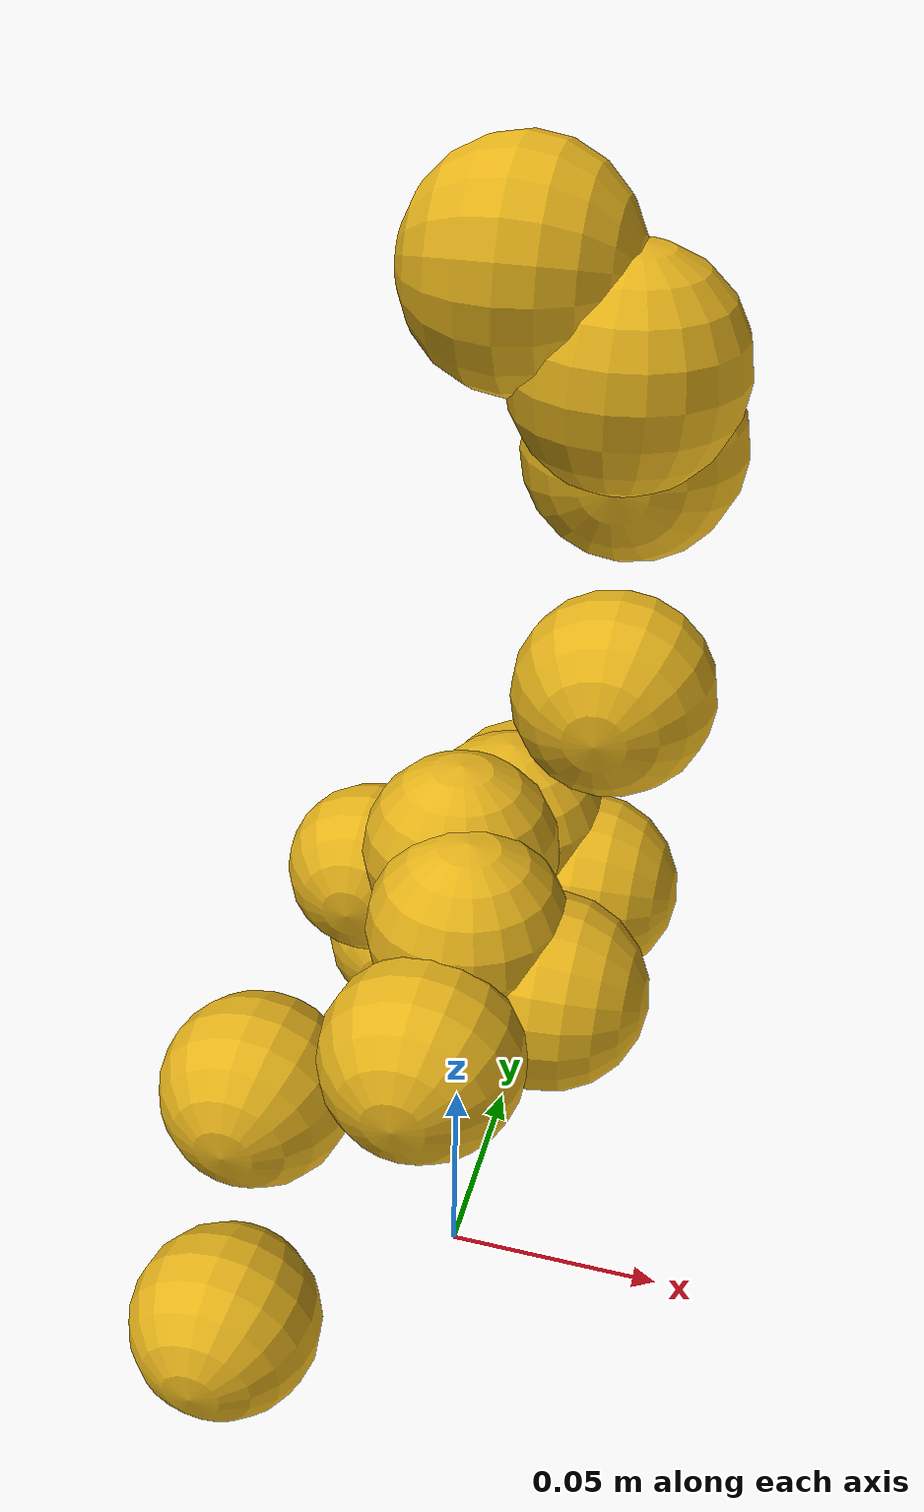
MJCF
<mujoco model="microduck">
  <compiler angle="radian" autolimits="true" />
  <worldbody>

    <body name="trunk_base" pos="0 0 0.12" quat="1 0 0 0">
      <freejoint name="trunk_base_freejoint" />
      <inertial pos="-0.0184191 6.58793e-06 0.00237545" mass="0.264385" fullinertia="0.00014465 0.000173927 0.000155277 1.1006e-08 -1.48335e-05 -7.0102e-08" />

      <site group="3" name="imu_bno" pos="-0.032 0.0140011 0.0430618" quat="1 0 -0 -0" />

      <site group="3" name="imu" pos="-0.021 6.53121e-05 -0.0148911" quat="1 -0 0 0" />

      <body name="yaw2roll" pos="0.006 0.0175 -0.005" quat="0 -0.707107 -0.707107 -0">

        <joint axis="0 0 1" name="left_hip_yaw" type="hinge" range="-0.4363323129985824 0.5235987755982988" />
        <inertial pos="-8.6e-11 0.00121491 0.0169312" mass="0.0235131" fullinertia="4.332e-06 3.52213e-06 2.40737e-06 -0 -0 -6.1011e-08" />

        <body name="hip_l" pos="-0 0.0165 0.0125" quat="0.707107 -0.707107 -0 0">

          <joint axis="0 0 1" name="left_hip_roll" type="hinge" range="-0.3839724354387516 0.38397243543875337" />
          <inertial pos="0.0152731 1.5269e-08 -0.00887078" mass="0.00521" fullinertia="7.39697e-07 9.80856e-07 5.50165e-07 1e-12 3.32804e-07 -1e-12" />

          <body name="left_upper_leg" pos="0.025 0 -0.0185" quat="0.5 -0.5 0.5 -0.5">

            <joint axis="0 0 1" name="left_hip_pitch" type="hinge" range="-1.5707963267949037 1.5707963267948895" />
            <inertial pos="0.00731784 0.0224795 0.0124951" mass="0.04315" fullinertia="1.47473e-05 8.74297e-06 1.74437e-05 -4.30685e-06 2.48476e-07 3.43647e-07" />

            <body name="leg" pos="0.022 0.0357771 -0.004" quat="0 0.707107 0.707107 -0">

              <joint axis="0 0 1" name="left_knee" type="hinge" range="-1.570796326794901 1.5707963267948921" />
              <inertial pos="-1.52e-10 0.0318937 -0.00953505" mass="0.0215844" fullinertia="5.25054e-06 2.15507e-06 4.33924e-06 -1e-12 0 7.64996e-07" />

              <body name="ankle_left" pos="-0 0.042 -0.026" quat="0 1 0 -0">

                <joint axis="0 0 1" name="left_ankle" type="hinge" range="-1.5707963267949019 1.5707963267948912" />
                <inertial pos="-0.0064761 -0.0135798 -0.0156785" mass="0.0264653" fullinertia="5.54455e-06 1.04088e-05 7.28364e-06 -1.94121e-07 8.6681e-08 5.8663e-08" />

                <site group="3" name="left_foot" pos="-0 -0.0237879 -0.0140852" quat="0 -0 0.707107 0.707107" />
              <geom type="sphere" size="0.02" rgba="0.9 0.7 0.1 1" /></body>
            <geom type="sphere" size="0.02" rgba="0.9 0.7 0.1 1" /></body>
          <geom type="sphere" size="0.02" rgba="0.9 0.7 0.1 1" /></body>
        <geom type="sphere" size="0.02" rgba="0.9 0.7 0.1 1" /></body>
      <geom type="sphere" size="0.02" rgba="0.9 0.7 0.1 1" /></body>

      <body name="neck" pos="0.026 0.0145011 0.0324424" quat="0 -0 -0.707107 0.707107">

        <joint axis="0 0 1" name="neck_pitch" type="hinge" range="-1.5707963267948966 1.0471975511965976" />
        <inertial pos="0 -0.025 0.0141665" mass="0.0368414" fullinertia="1.72925e-05 3.12694e-06 1.63707e-05 0 0 0" />

        <body name="neck_pitch" pos="0 -0.05 0" quat="0 1 0 0">

          <joint axis="0 0 1" name="head_pitch" type="hinge" range="-1.5707963267948966 1.5707963267948966" />
          <inertial pos="-6.533e-09 0.0116641 -0.0145" mass="0.00572" fullinertia="1.09186e-06 9.66855e-07 5.12111e-07 0 0 0" />

          <body name="yaw_roll_motion" pos="-0 0.0186931 -0.0145" quat="0 -0 -0.707107 -0.707107">

            <joint axis="0 0 1" name="head_yaw" type="hinge" range="-2.967059728390364 2.967059728390357" />
            <inertial pos="-0.00140611 -0.00599577 0.0155412" mass="0.02492" fullinertia="3.73979e-06 3.14478e-06 4.07916e-06 1.87232e-07 4.603e-09 3.1883e-08" />

            <body name="bottom_head_shell" pos="-0.0179 0 0.0145" quat="0.707107 -0 -0.707107 0">

              <joint axis="0 0 1" name="head_roll" type="hinge" range="-0.4363323129986037 0.43633231299856107" />
              <inertial pos="0.00368889 0.00145319 -0.0329861" mass="0.172649" fullinertia="0.000292186 0.000223546 0.000142648 -1.11987e-06 3.85879e-06 3.78829e-06" />

              <site group="3" name="head_camera" pos="0.01175 0 -0.0735" quat="0.707107 0 0.707107 -0" />
              <site group="3" name="mouth_tip" pos="-0.00829334 0 -0.0777383" quat="0.658004 -0.0201775 0.75239 0.0230718" />

              <site group="3" name="tof" pos="0.0143 0.0225 -0.0735" quat="0.707107 0 0.707107 -0" />

              <site group="3" name="head_imu" pos="0.0114823 0.000202447 -0.05126" quat="1 0 0 -0" />
            <geom type="sphere" size="0.02" rgba="0.9 0.7 0.1 1" /></body>
          <geom type="sphere" size="0.02" rgba="0.9 0.7 0.1 1" /></body>
        <geom type="sphere" size="0.02" rgba="0.9 0.7 0.1 1" /></body>
      <geom type="sphere" size="0.02" rgba="0.9 0.7 0.1 1" /></body>

      <body name="bearing_roll" pos="0.006 -0.0175 -0.005" quat="0 -0.707107 -0.707107 -0">

        <joint axis="0 0 1" name="right_hip_yaw" type="hinge" range="-0.5235987755982988 0.4363323129985824" />
        <inertial pos="-8.6e-11 0.00121491 0.0169312" mass="0.0235131" fullinertia="4.332e-06 3.52213e-06 2.40737e-06 -0 -0 -6.1011e-08" />

        <body name="hip_l_2" pos="-0 0.0165 0.0125" quat="0 -0 0.707107 0.707107">

          <joint axis="0 0 1" name="right_hip_roll" type="hinge" range="-0.3839724354387525 0.3839724354387525" />
          <inertial pos="0.0152731 1.5309e-08 -0.00887078" mass="0.00521" fullinertia="7.39697e-07 9.80856e-07 5.50165e-07 1e-12 3.32804e-07 -1e-12" />

          <body name="right_upper_leg" pos="0.025 0 -0.0185" quat="0.5 -0.5 0.5 -0.5">

            <joint axis="0 0 1" name="right_hip_pitch" type="hinge" range="-1.5707963267949 1.570796326794893" />
            <inertial pos="-0.00731784 0.0224795 0.0124951" mass="0.04315" fullinertia="1.47473e-05 8.74297e-06 1.74437e-05 4.30685e-06 -2.48476e-07 3.43648e-07" />

            <body name="leg_2" pos="-0.022 0.0357771 -0.004" quat="0 1 -0 -0">

              <joint axis="0 0 1" name="right_knee" type="hinge" range="-1.570796326794901 1.5707963267948921" />
              <inertial pos="-0.0318937 -1.52e-10 -0.00953505" mass="0.0215844" fullinertia="2.15507e-06 5.25054e-06 4.33924e-06 1e-12 -7.64996e-07 0" />

              <body name="ankle_right" pos="-0.042 -0 -0.026" quat="0 -0.707107 0.707107 0">

                <joint axis="0 0 1" name="right_ankle" type="hinge" range="-1.5707963267949028 1.5707963267948903" />
                <inertial pos="-0.00647683 0.0135791 -0.0156784" mass="0.0264654" fullinertia="5.54401e-06 1.04095e-05 7.28472e-06 1.94071e-07 8.5523e-08 -5.871e-08" />

                <site group="3" name="right_foot" pos="-0 0.0237879 -0.0140852" quat="0 -0 0.707107 -0.707107" />
              <geom type="sphere" size="0.02" rgba="0.9 0.7 0.1 1" /></body>
            <geom type="sphere" size="0.02" rgba="0.9 0.7 0.1 1" /></body>
          <geom type="sphere" size="0.02" rgba="0.9 0.7 0.1 1" /></body>
        <geom type="sphere" size="0.02" rgba="0.9 0.7 0.1 1" /></body>
      <geom type="sphere" size="0.02" rgba="0.9 0.7 0.1 1" /></body>
    <geom type="sphere" size="0.02" rgba="0.9 0.7 0.1 1" /></body>
  </worldbody>
  </mujoco>
